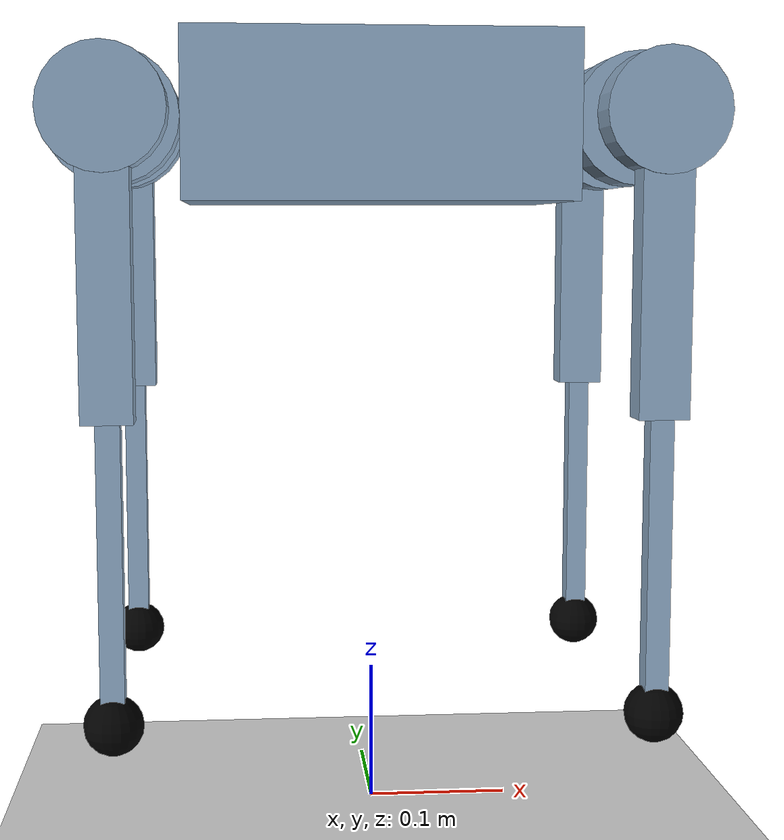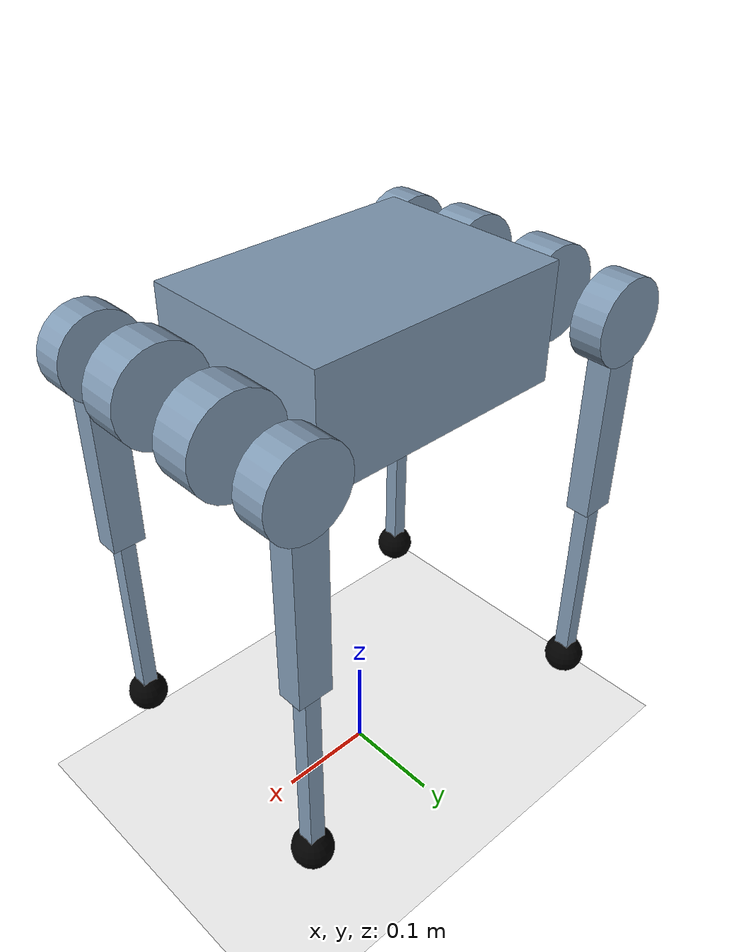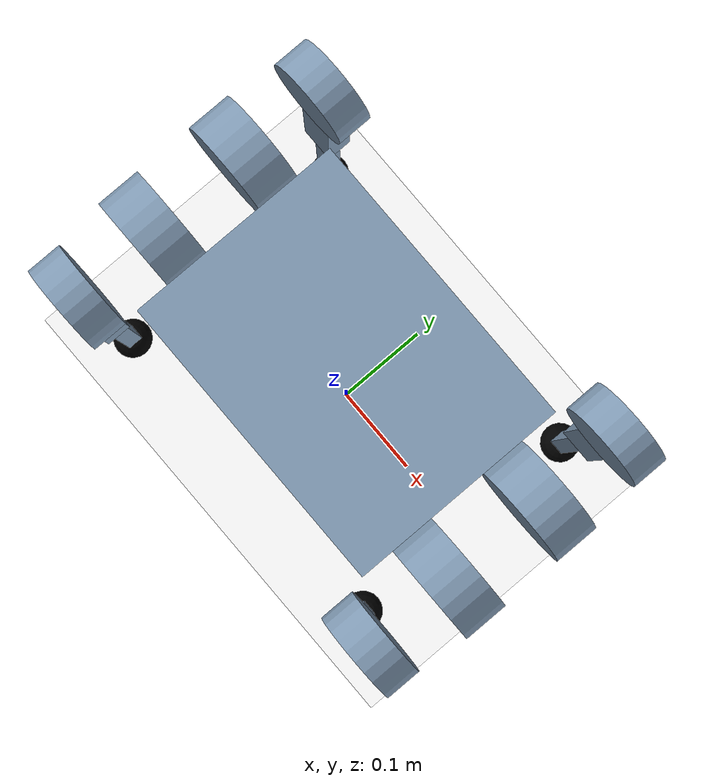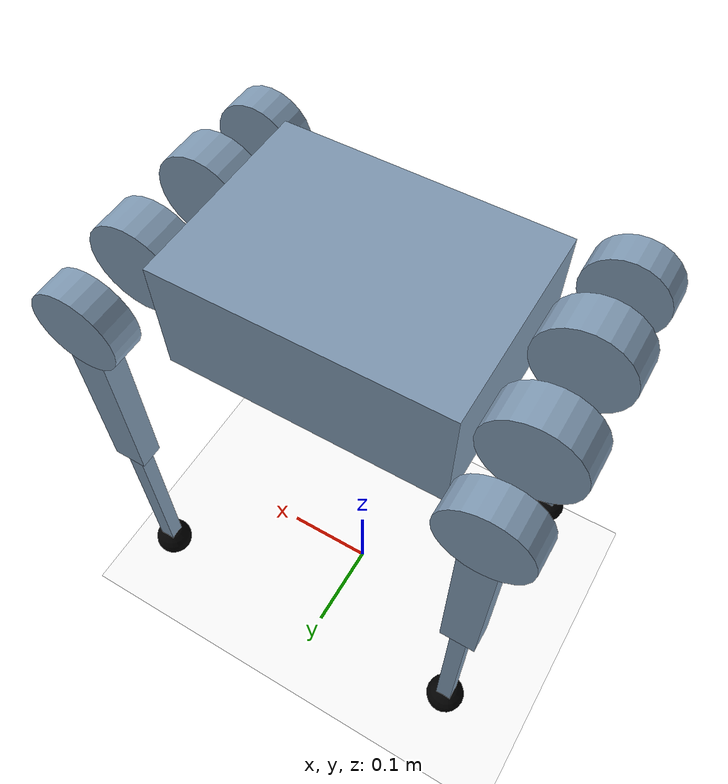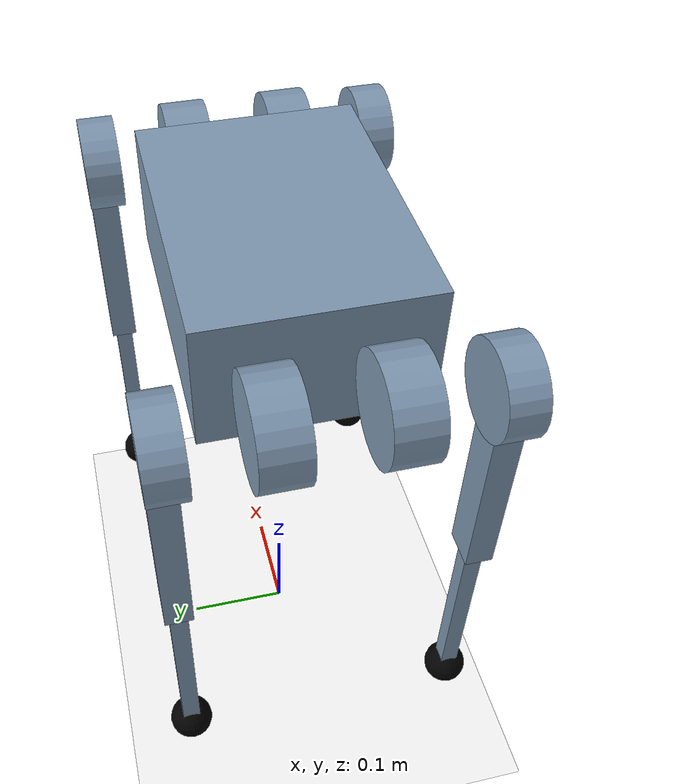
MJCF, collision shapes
<mujoco model="a1">
        <compiler angle="radian" meshdir="meshes" autolimits="true" />
        <size njmax="5000" nconmax="10000" />

        <default>
            <light castshadow="false" diffuse="1 1 1" />
            <camera fovy="60" />
            <default class="visual">
                <geom contype="0" conaffinity="0" group="1" type="mesh" rgba="0.9 0.9 0.9 1.0" />
            </default>
            <joint damping="0.1" armature="0.01" frictionloss="0.1" />
            <geom contype="1" conaffinity="1" friction="1.0 0.8 0.8" rgba="0.5 0.6 0.7 0" margin="0.001"
                group="0" />
        </default>
        <visual>
            <rgba com="0.502 1.0 0 1.0" contactpoint="0.5 0.1 0.8 0.4" contactforce="0.2 0.98 0.2 0.8" />
            <scale com="0.2" forcewidth="0.05" contactwidth="0.10" contactheight="0.04" />
        </visual>

        <asset>
            <mesh name="trunk" file="trunk.stl" />
            <mesh name="hip" file="hip.stl" />
            <mesh name="thigh_mirror" file="thigh_mirror.stl" />
            <mesh name="calf" file="calf.stl" />
            <mesh name="thigh" file="thigh.stl" />
            <hfield name="height_map" nrow="120" ncol="300" size="3 1.2 3 0.1" />
        </asset>

        <asset>
            <texture type="skybox" builtin="gradient" width="512" height="512" rgb1="0.6 0.6 0.6"
                rgb2="0.6 0.6 0.6" />
            <texture name="texplane" type="2d" builtin="checker" rgb1=".4 .4 .4" rgb2=".6 .6 .6"
                width="512"
                height="512" mark="cross" markrgb="0 0 0" />
            <material name="plane" reflectance='0' texture="texplane" texrepeat="1 1"
                texuniform="true"
                rgba=".7 .7 .7 1" />
        </asset>
        <option timestep="0.0005" />

        <worldbody>
            <geom name="floor" pos="0 0 0" euler="0 0 0" size="0 0 1" type="plane" material="plane"
                condim="3" conaffinity="1" contype="1" rgba="1 1 1 1" />
            <light directional="true" diffuse=".8 .8 .8" pos="0 0 10" dir="0 0 -10" />
            <camera name="track" mode="trackcom" pos="0 -2.3 1.6" xyaxes="1 0 0 0 0.707 0.707" />
            <body name="trunk" pos="0 0 0.5">
                <inertial pos="0 0.00409932 -0.000499917"
                    quat="-0.00182555 0.706381 -0.000641993 0.707829"
                    mass="6.001" diaginertia="0.0457544 0.0378999 0.0159531" />
                <joint type="free" damping="0"/>
                <geom class="visual" mesh="trunk" />
                <geom size="0.1335 0.097 0.057" type="box" />
                <geom size="0.0005 0.0005 0.0005" type="box" contype="0" conaffinity="0" group="1"
                    density="0" />
                <geom size="0.0005 0.0005 0.0005" type="box" />
                <site name="imu" pos="0 0 0" />
                <body name="FR_hip" pos="0.1805 -0.047 0">
                    <inertial pos="-0.00266413 -0.0163358 2.49436e-05"
                        quat="0.475134 0.521822 -0.477036 0.523818" mass="0.864993"
                        diaginertia="0.00151807 0.00143717 0.000946744" />
                    <joint name="FR_hip_joint" pos="0 0 0" axis="1 0 0" range="-0.802851 0.802851"
                        damping="0.01" frictionloss="0.2" />
                    <geom quat="0 1 0 0" class="visual"
                        mesh="hip" />
                    <geom size="0.046 0.02" quat="0.707107 0.707107 0 0" type="cylinder" />
                    <geom size="0.041 0.016" pos="0 -0.081 0" quat="0.707107 0.707107 0 0"
                        type="cylinder" />
                    <body name="FR_thigh" pos="0 -0.0838 0">
                        <inertial pos="-0.003237 0.022327 -0.027326"
                            quat="0.999125 -0.00256393 -0.0409531 -0.00806091" mass="1.013"
                            diaginertia="0.00555739 0.00513936 0.00133944" />
                        <joint name="FR_thigh_joint" pos="0 0 0" axis="0 1 0" range="-1.0472 4.18879"
                            damping="0.01" frictionloss="0.2" />
                        <geom class="visual"
                            mesh="thigh_mirror" />
                        <geom size="0.1 0.01225 0.017" pos="0 0 -0.1" quat="0.707107 0 0.707107 0"
                            type="box" />
                        <body name="FR_calf" pos="0 0 -0.2">
                            <inertial pos="0.00472659 0 -0.131975"
                                quat="0.706886 0.017653 0.017653 0.706886"
                                mass="0.226" diaginertia="0.00340344 0.00339393 3.54834e-05" />
                            <joint name="FR_calf_joint" pos="0 0 0" axis="0 1 0"
                                range="-2.69653 -0.916298"
                                damping="0.01" frictionloss="0.2" />
                            <geom class="visual"
                                mesh="calf" />
                            <geom size="0.1 0.008 0.008" pos="0 0 -0.1" quat="0.707107 0 0.707107 0"
                                type="box" />
                            <geom size="0.01" pos="0 0 -0.2" contype="0" conaffinity="0" group="1"
                                density="0" />

                            <geom size="0.02" pos="0 0 -0.2" rgba="0 0 0 1" />
                            <site name="fr_tc" size="0.02" pos="0 0 -0.2" rgba="0.4 0.4 0.95 0.6" />
                        </body>
                    </body>
                </body>
                <body name="FL_hip" pos="0.1805 0.047 0">
                    <inertial pos="-0.00266413 0.0163358 2.49436e-05"
                        quat="0.521822 0.475134 -0.523818 0.477036" mass="0.864993"
                        diaginertia="0.00151807 0.00143717 0.000946744" />
                    <joint name="FL_hip_joint" pos="0 0 0" axis="1 0 0" range="-0.802851 0.802851"
                        damping="0.01" frictionloss="0.2" />
                    <geom class="visual" mesh="hip" />
                    <geom size="0.046 0.02" quat="0.707107 0.707107 0 0" type="cylinder" />
                    <geom size="0.041 0.016" pos="0 0.081 0" quat="0.707107 0.707107 0 0"
                        type="cylinder" />
                    <body name="FL_thigh" pos="0 0.0838 0">
                        <inertial pos="-0.003237 -0.022327 -0.027326"
                            quat="0.999125 0.00256393 -0.0409531 0.00806091" mass="1.013"
                            diaginertia="0.00555739 0.00513936 0.00133944" />
                        <joint name="FL_thigh_joint" pos="0 0 0" axis="0 1 0" range="-1.0472 4.18879"
                            damping="0.01" frictionloss="0.2" />
                        <geom class="visual" mesh="thigh" />
                        <geom size="0.1 0.01225 0.017" pos="0 0 -0.1" quat="0.707107 0 0.707107 0"
                            type="box" />
                        <body name="FL_calf" pos="0 0 -0.2">
                            <inertial pos="0.00472659 0 -0.131975"
                                quat="0.706886 0.017653 0.017653 0.706886"
                                mass="0.226" diaginertia="0.00340344 0.00339393 3.54834e-05" />
                            <joint name="FL_calf_joint" pos="0 0 0" axis="0 1 0"
                                range="-2.69653 -0.916298"
                                damping="0.01" frictionloss="0.2" />
                            <geom class="visual"
                                mesh="calf" />
                            <geom size="0.1 0.008 0.008" pos="0 0 -0.1" quat="0.707107 0 0.707107 0"
                                type="box" />
                            <geom size="0.01" pos="0 0 -0.2" contype="0" conaffinity="0" group="1"
                                density="0" />

                            <geom size="0.02" pos="0 0 -0.2" rgba="0 0 0 1" />
                            <site name="fl_tc" size="0.02" pos="0 0 -0.2" rgba="0.4 0.4 0.95 0.6" />
                        </body>
                    </body>
                </body>
                <body name="RR_hip" pos="-0.1805 -0.047 0">
                    <inertial pos="0.00266413 -0.0163358 2.49436e-05"
                        quat="0.523818 0.477036 -0.521822 0.475134" mass="0.864993"
                        diaginertia="0.00151807 0.00143717 0.000946744" />
                    <joint name="RR_hip_joint" pos="0 0 0" axis="1 0 0" range="-0.802851 0.802851"
                        damping="0.01" frictionloss="0.2" />
                    <geom quat="0 0 0 -1" class="visual"
                        mesh="hip" />
                    <geom size="0.046 0.02" quat="0.707107 0.707107 0 0" type="cylinder" />
                    <geom size="0.041 0.016" pos="0 -0.081 0" quat="0.707107 0.707107 0 0"
                        type="cylinder" />
                    <body name="RR_thigh" pos="0 -0.0838 0">
                        <inertial pos="-0.003237 0.022327 -0.027326"
                            quat="0.999125 -0.00256393 -0.0409531 -0.00806091" mass="1.013"
                            diaginertia="0.00555739 0.00513936 0.00133944" />
                        <joint name="RR_thigh_joint" pos="0 0 0" axis="0 1 0" range="-1.0472 4.18879"
                            damping="0.01" frictionloss="0.2" />
                        <geom class="visual"
                            mesh="thigh_mirror" />
                        <geom size="0.1 0.01225 0.017" pos="0 0 -0.1" quat="0.707107 0 0.707107 0"
                            type="box" />
                        <body name="RR_calf" pos="0 0 -0.2">
                            <inertial pos="0.00472659 0 -0.131975"
                                quat="0.706886 0.017653 0.017653 0.706886"
                                mass="0.226" diaginertia="0.00340344 0.00339393 3.54834e-05" />
                            <joint name="RR_calf_joint" pos="0 0 0" axis="0 1 0"
                                range="-2.69653 -0.916298"
                                damping="0.01" frictionloss="0.2" />
                            <geom class="visual"
                                mesh="calf" />
                            <geom size="0.1 0.008 0.008" pos="0 0 -0.1" quat="0.707107 0 0.707107 0"
                                type="box" />
                            <geom size="0.01" pos="0 0 -0.2" contype="0" conaffinity="0" group="1"
                                density="0" />
                            <geom size="0.02" pos="0 0 -0.2" rgba="0 0 0 1" />
                            <site name="rr_tc" size="0.02" pos="0 0 -0.2" rgba="0.4 0.4 0.95 0.6" />
                        </body>
                    </body>
                </body>
                <body name="RL_hip" pos="-0.1805 0.047 0">
                    <inertial pos="0.00266413 0.0163358 2.49436e-05"
                        quat="0.477036 0.523818 -0.475134 0.521822"
                        mass="0.864993" diaginertia="0.00151807 0.00143717 0.000946744" />
                    <joint name="RL_hip_joint" pos="0 0 0" axis="1 0 0" range="-0.802851 0.802851"
                        damping="0.01" frictionloss="0.2" />
                    <geom quat="0 0 1 0" class="visual"
                        mesh="hip" />
                    <geom size="0.046 0.02" quat="0.707107 0.707107 0 0" type="cylinder" />
                    <geom size="0.041 0.016" pos="0 0.081 0" quat="0.707107 0.707107 0 0"
                        type="cylinder" />
                    <body name="RL_thigh" pos="0 0.0838 0">
                        <inertial pos="-0.003237 -0.022327 -0.027326"
                            quat="0.999125 0.00256393 -0.0409531 0.00806091" mass="1.013"
                            diaginertia="0.00555739 0.00513936 0.00133944" />
                        <joint name="RL_thigh_joint" pos="0 0 0" axis="0 1 0" range="-1.0472 4.18879"
                            damping="0.01" frictionloss="0.2" />
                        <geom class="visual" mesh="thigh" />
                        <geom size="0.1 0.01225 0.017" pos="0 0 -0.1" quat="0.707107 0 0.707107 0"
                            type="box" />
                        <body name="RL_calf" pos="0 0 -0.2">
                            <inertial pos="0.00472659 0 -0.131975"
                                quat="0.706886 0.017653 0.017653 0.706886"
                                mass="0.226" diaginertia="0.00340344 0.00339393 3.54834e-05" />
                            <joint name="RL_calf_joint" pos="0 0 0" axis="0 1 0"
                                range="-2.69653 -0.916298"
                                damping="0.01" frictionloss="0.2" />
                            <geom class="visual"
                                mesh="calf" />
                            <geom size="0.1 0.008 0.008" pos="0 0 -0.1" quat="0.707107 0 0.707107 0"
                                type="box" />
                            <geom size="0.01" pos="0 0 -0.2" contype="0" conaffinity="0" group="1"
                                density="0" />
                            <geom size="0.02" pos="0 0 -0.2" rgba="0 0 0 1" />
                            <site name="rl_tc" size="0.02" pos="0 0 -0.2" rgba="0.4 0.4 0.95 0.6" />
                        </body>
                    </body>
                </body>
            </body>
        </worldbody>

        <actuator>
            <motor name="FL_hip_joint" gear="1" joint="FL_hip_joint" />
            <motor name="FL_thigh_joint" gear="1" joint="FL_thigh_joint" />
            <motor name="FL_calf_joint" gear="1" joint="FL_calf_joint" />
            <motor name="FR_hip_joint" gear="1" joint="FR_hip_joint" />
            <motor name="FR_thigh_joint" gear="1" joint="FR_thigh_joint" />
            <motor name="FR_calf_joint" gear="1" joint="FR_calf_joint" />
            <motor name="RL_hip_joint" gear="1" joint="RL_hip_joint" />
            <motor name="RL_thigh_joint" gear="1" joint="RL_thigh_joint" />
            <motor name="RL_calf_joint" gear="1" joint="RL_calf_joint" />
            <motor name="RR_hip_joint" gear="1" joint="RR_hip_joint" />
            <motor name="RR_thigh_joint" gear="1" joint="RR_thigh_joint" />
            <motor name="RR_calf_joint" gear="1" joint="RR_calf_joint" />
        </actuator>

        <sensor>
            <framequat name="Body_Quat" objtype="site" objname="imu" />
            <gyro name="Body_Gyro" site="imu" />
            <accelerometer name="Body_Acc" site="imu" />

            <jointpos name="FL_hip_pos" joint="FL_hip_joint" />
            <jointpos name="FL_thigh_pos" joint="FL_thigh_joint" />
            <jointpos name="FL_calf_pos" joint="FL_calf_joint" />
            <jointpos name="FR_hip_pos" joint="FR_hip_joint" />
            <jointpos name="FR_thigh_pos" joint="FR_thigh_joint" />
            <jointpos name="FR_calf_pos" joint="FR_calf_joint" />
            <jointpos name="RL_hip_pos" joint="RL_hip_joint" />
            <jointpos name="RL_thigh_pos" joint="RL_thigh_joint" />
            <jointpos name="RL_calf_pos" joint="RL_calf_joint" />
            <jointpos name="RR_hip_pos" joint="RR_hip_joint" />
            <jointpos name="RR_thigh_pos" joint="RR_thigh_joint" />
            <jointpos name="RR_calf_pos" joint="RR_calf_joint" />

            <jointvel name="FL_hip_vel" joint="FL_hip_joint" />
            <jointvel name="FL_thigh_vel" joint="FL_thigh_joint" />
            <jointvel name="FL_calf_vel" joint="FL_calf_joint" />
            <jointvel name="FR_hip_vel" joint="FR_hip_joint" />
            <jointvel name="FR_thigh_vel" joint="FR_thigh_joint" />
            <jointvel name="FR_calf_vel" joint="FR_calf_joint" />
            <jointvel name="RL_hip_vel" joint="RL_hip_joint" />
            <jointvel name="RL_thigh_vel" joint="RL_thigh_joint" />
            <jointvel name="RL_calf_vel" joint="RL_calf_joint" />
            <jointvel name="RR_hip_vel" joint="RR_hip_joint" />
            <jointvel name="RR_thigh_vel" joint="RR_thigh_joint" />
            <jointvel name="RR_calf_vel" joint="RR_calf_joint" />

            <touch name="fl_touch" site="fl_tc" />
            <touch name="fr_touch" site="fr_tc" />
            <touch name="rl_touch" site="rl_tc" />
            <touch name="rr_touch" site="rr_tc" />
        </sensor>

    </mujoco>
